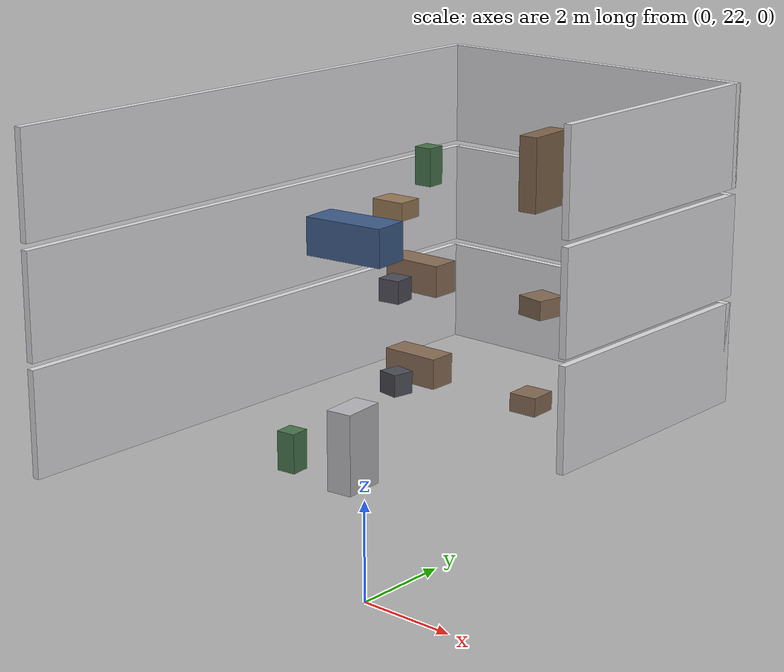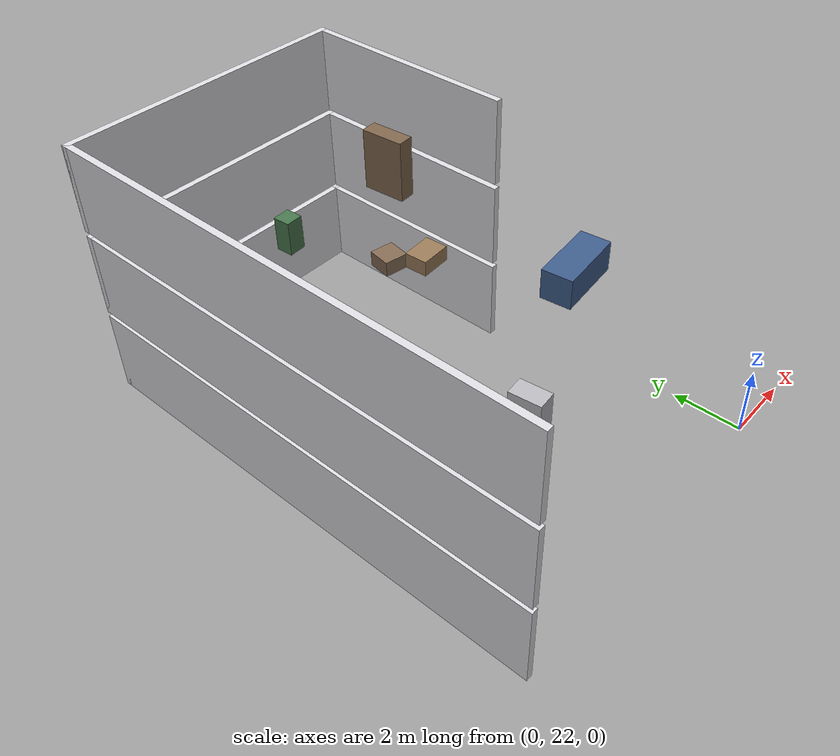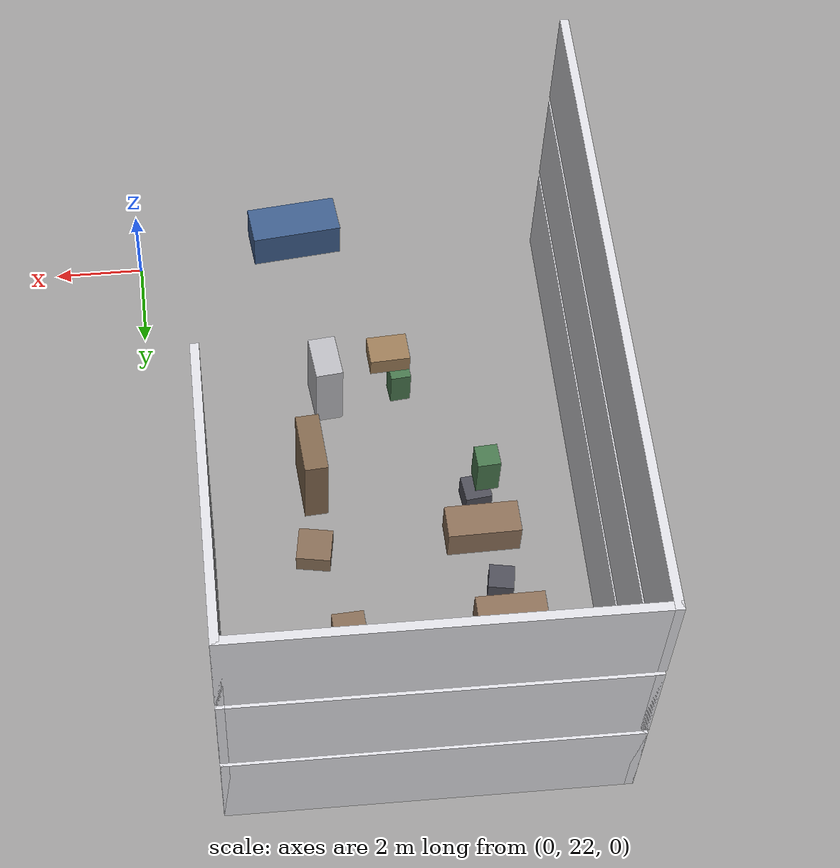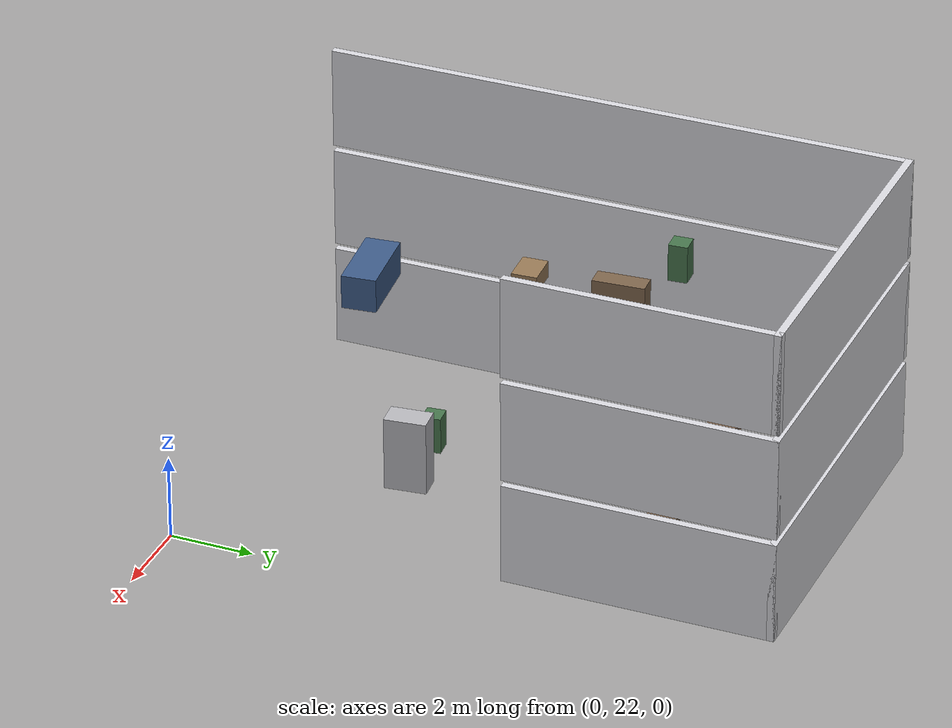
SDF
<sdf version="1.7">
 <model name="generated_building">
  <static>true</static>
  <link name="floor_0_room_2_corridor_wall_upper">
   <pose>-1.1900 32.7025 1.2250 0.0000 0.0000 0.0000</pose>
   <collision name="floor_0_room_2_corridor_wall_upper_collision">
    <geometry><box><size>0.1800 6.4150 2.4500</size></box></geometry>
   </collision>
   <visual name="floor_0_room_2_corridor_wall_upper_visual">
    <geometry><box><size>0.1800 6.4150 2.4500</size></box></geometry>
    <material><ambient>0.86 0.86 0.88 1</ambient><diffuse>0.86 0.86 0.88 1</diffuse></material>
   </visual>
   <gravity>false</gravity>
  </link>
  <link name="floor_0_room_2_west_wall">
   <pose>-9.4100 28.8950 1.2250 0.0000 0.0000 0.0000</pose>
   <collision name="floor_0_room_2_west_wall_collision">
    <geometry><box><size>0.1800 14.0300 2.4500</size></box></geometry>
   </collision>
   <visual name="floor_0_room_2_west_wall_visual">
    <geometry><box><size>0.1800 14.0300 2.4500</size></box></geometry>
    <material><ambient>0.86 0.86 0.88 1</ambient><diffuse>0.86 0.86 0.88 1</diffuse></material>
   </visual>
   <gravity>false</gravity>
  </link>
  <link name="floor_0_room_2_north_wall">
   <pose>-5.3000 35.8200 1.2250 0.0000 0.0000 0.0000</pose>
   <collision name="floor_0_room_2_north_wall_collision">
    <geometry><box><size>8.4000 0.1800 2.4500</size></box></geometry>
   </collision>
   <visual name="floor_0_room_2_north_wall_visual">
    <geometry><box><size>8.4000 0.1800 2.4500</size></box></geometry>
    <material><ambient>0.86 0.86 0.88 1</ambient><diffuse>0.86 0.86 0.88 1</diffuse></material>
   </visual>
   <gravity>false</gravity>
  </link>
  <link name="floor_0_room_2_desk">
   <pose>-7.46135201 32.1159734 0.45 0 0 0.0158183873</pose>
   <collision name="floor_0_room_2_desk_collision">
    <geometry><box><size>1.5000 0.7000 0.7500</size></box></geometry>
   </collision>
   <visual name="floor_0_room_2_desk_visual">
    <geometry><box><size>1.5000 0.7000 0.7500</size></box></geometry>
    <material><ambient>0.54 0.43 0.34 1</ambient><diffuse>0.54 0.43 0.34 1</diffuse></material>
   </visual>
   <gravity>false</gravity>
  </link>
  <link name="floor_0_room_2_chair">
   <pose>-7.37490355 31.1940905 0.28 0 0 -0.173173231</pose>
   <collision name="floor_0_room_2_chair_collision">
    <geometry><box><size>0.5500 0.5500 0.5500</size></box></geometry>
   </collision>
   <visual name="floor_0_room_2_chair_visual">
    <geometry><box><size>0.5500 0.5500 0.5500</size></box></geometry>
    <material><ambient>0.30 0.30 0.34 1</ambient><diffuse>0.30 0.30 0.34 1</diffuse></material>
   </visual>
   <gravity>false</gravity>
  </link>
  <link name="floor_0_room_2_cabinet">
   <pose>-4.02194807 26.0336138 0.9 0 0 0.106755562</pose>
   <collision name="floor_0_room_2_cabinet_collision">
    <geometry><box><size>0.6000 1.0000 1.8000</size></box></geometry>
   </collision>
   <visual name="floor_0_room_2_cabinet_visual">
    <geometry><box><size>0.6000 1.0000 1.8000</size></box></geometry>
    <material><ambient>0.72 0.72 0.74 1</ambient><diffuse>0.72 0.72 0.74 1</diffuse></material>
   </visual>
   <gravity>false</gravity>
  </link>
  <link name="floor_0_room_2_side_table">
   <pose>-4.01439308 32.1215445 0.32 0 0 0.059338545</pose>
   <collision name="floor_0_room_2_side_table_collision">
    <geometry><box><size>0.7000 0.7000 0.4500</size></box></geometry>
   </collision>
   <visual name="floor_0_room_2_side_table_visual">
    <geometry><box><size>0.7000 0.7000 0.4500</size></box></geometry>
    <material><ambient>0.52 0.42 0.33 1</ambient><diffuse>0.52 0.42 0.33 1</diffuse></material>
   </visual>
   <gravity>false</gravity>
  </link>
  <link name="floor_0_room_2_planter">
   <pose>-5.70854987 25.9253672 0.45 0 0 0.0981988586</pose>
   <collision name="floor_0_room_2_planter_collision">
    <geometry><box><size>0.4500 0.4500 0.9000</size></box></geometry>
   </collision>
   <visual name="floor_0_room_2_planter_visual">
    <geometry><box><size>0.4500 0.4500 0.9000</size></box></geometry>
    <material><ambient>0.28 0.46 0.30 1</ambient><diffuse>0.28 0.46 0.30 1</diffuse></material>
   </visual>
   <gravity>false</gravity>
  </link>
  <link name="floor_1_room_2_corridor_wall_upper">
   <pose>-1.1900 32.7025 3.8250 0.0000 0.0000 0.0000</pose>
   <collision name="floor_1_room_2_corridor_wall_upper_collision">
    <geometry><box><size>0.1800 6.4150 2.4500</size></box></geometry>
   </collision>
   <visual name="floor_1_room_2_corridor_wall_upper_visual">
    <geometry><box><size>0.1800 6.4150 2.4500</size></box></geometry>
    <material><ambient>0.86 0.86 0.88 1</ambient><diffuse>0.86 0.86 0.88 1</diffuse></material>
   </visual>
   <gravity>false</gravity>
  </link>
  <link name="floor_1_room_2_west_wall">
   <pose>-9.4100 28.8950 3.8250 0.0000 0.0000 0.0000</pose>
   <collision name="floor_1_room_2_west_wall_collision">
    <geometry><box><size>0.1800 14.0300 2.4500</size></box></geometry>
   </collision>
   <visual name="floor_1_room_2_west_wall_visual">
    <geometry><box><size>0.1800 14.0300 2.4500</size></box></geometry>
    <material><ambient>0.86 0.86 0.88 1</ambient><diffuse>0.86 0.86 0.88 1</diffuse></material>
   </visual>
   <gravity>false</gravity>
  </link>
  <link name="floor_1_room_2_north_wall">
   <pose>-5.3000 35.8200 3.8250 0.0000 0.0000 0.0000</pose>
   <collision name="floor_1_room_2_north_wall_collision">
    <geometry><box><size>8.4000 0.1800 2.4500</size></box></geometry>
   </collision>
   <visual name="floor_1_room_2_north_wall_visual">
    <geometry><box><size>8.4000 0.1800 2.4500</size></box></geometry>
    <material><ambient>0.86 0.86 0.88 1</ambient><diffuse>0.86 0.86 0.88 1</diffuse></material>
   </visual>
   <gravity>false</gravity>
  </link>
  <link name="floor_1_room_2_desk">
   <pose>-6.76269468 31.3724194 3.05 0 0 0.0217037175</pose>
   <collision name="floor_1_room_2_desk_collision">
    <geometry><box><size>1.5000 0.7000 0.7500</size></box></geometry>
   </collision>
   <visual name="floor_1_room_2_desk_visual">
    <geometry><box><size>1.5000 0.7000 0.7500</size></box></geometry>
    <material><ambient>0.54 0.43 0.34 1</ambient><diffuse>0.54 0.43 0.34 1</diffuse></material>
   </visual>
   <gravity>false</gravity>
  </link>
  <link name="floor_1_room_2_chair">
   <pose>-6.75245976 30.4551013 2.88 0 0 0.117541975</pose>
   <collision name="floor_1_room_2_chair_collision">
    <geometry><box><size>0.5500 0.5500 0.5500</size></box></geometry>
   </collision>
   <visual name="floor_1_room_2_chair_visual">
    <geometry><box><size>0.5500 0.5500 0.5500</size></box></geometry>
    <material><ambient>0.30 0.30 0.34 1</ambient><diffuse>0.30 0.30 0.34 1</diffuse></material>
   </visual>
   <gravity>false</gravity>
  </link>
  <link name="floor_1_room_2_side_table">
   <pose>-3.31942091 31.5248161 2.92 0 0 -0.171241131</pose>
   <collision name="floor_1_room_2_side_table_collision">
    <geometry><box><size>0.7000 0.7000 0.4500</size></box></geometry>
   </collision>
   <visual name="floor_1_room_2_side_table_visual">
    <geometry><box><size>0.7000 0.7000 0.4500</size></box></geometry>
    <material><ambient>0.52 0.42 0.33 1</ambient><diffuse>0.52 0.42 0.33 1</diffuse></material>
   </visual>
   <gravity>false</gravity>
  </link>
  <link name="floor_2_room_2_corridor_wall_upper">
   <pose>-1.1900 32.7025 6.4250 0.0000 0.0000 0.0000</pose>
   <collision name="floor_2_room_2_corridor_wall_upper_collision">
    <geometry><box><size>0.1800 6.4150 2.4500</size></box></geometry>
   </collision>
   <visual name="floor_2_room_2_corridor_wall_upper_visual">
    <geometry><box><size>0.1800 6.4150 2.4500</size></box></geometry>
    <material><ambient>0.86 0.86 0.88 1</ambient><diffuse>0.86 0.86 0.88 1</diffuse></material>
   </visual>
   <gravity>false</gravity>
  </link>
  <link name="floor_2_room_2_west_wall">
   <pose>-9.4100 28.8950 6.4250 0.0000 0.0000 0.0000</pose>
   <collision name="floor_2_room_2_west_wall_collision">
    <geometry><box><size>0.1800 14.0300 2.4500</size></box></geometry>
   </collision>
   <visual name="floor_2_room_2_west_wall_visual">
    <geometry><box><size>0.1800 14.0300 2.4500</size></box></geometry>
    <material><ambient>0.86 0.86 0.88 1</ambient><diffuse>0.86 0.86 0.88 1</diffuse></material>
   </visual>
   <gravity>false</gravity>
  </link>
  <link name="floor_2_room_2_north_wall">
   <pose>-5.3000 35.8200 6.4250 0.0000 0.0000 0.0000</pose>
   <collision name="floor_2_room_2_north_wall_collision">
    <geometry><box><size>8.4000 0.1800 2.4500</size></box></geometry>
   </collision>
   <visual name="floor_2_room_2_north_wall_visual">
    <geometry><box><size>8.4000 0.1800 2.4500</size></box></geometry>
    <material><ambient>0.86 0.86 0.88 1</ambient><diffuse>0.86 0.86 0.88 1</diffuse></material>
   </visual>
   <gravity>false</gravity>
  </link>
  <link name="floor_2_room_2_sofa_b">
   <pose>-3.39829543 25.44743 5.65 0 0 3.24763364</pose>
   <collision name="floor_2_room_2_sofa_b_collision">
    <geometry><box><size>1.8000 0.8000 0.8000</size></box></geometry>
   </collision>
   <visual name="floor_2_room_2_sofa_b_visual">
    <geometry><box><size>1.8000 0.8000 0.8000</size></box></geometry>
    <material><ambient>0.24 0.36 0.54 1</ambient><diffuse>0.24 0.36 0.54 1</diffuse></material>
   </visual>
   <gravity>false</gravity>
  </link>
  <link name="floor_2_room_2_coffee_table">
   <pose>-5.05279221 28.5545542 5.45 0 0 0.0586070767</pose>
   <collision name="floor_2_room_2_coffee_table_collision">
    <geometry><box><size>0.8000 0.6000 0.4000</size></box></geometry>
   </collision>
   <visual name="floor_2_room_2_coffee_table_visual">
    <geometry><box><size>0.8000 0.6000 0.4000</size></box></geometry>
    <material><ambient>0.60 0.48 0.34 1</ambient><diffuse>0.60 0.48 0.34 1</diffuse></material>
   </visual>
   <gravity>false</gravity>
  </link>
  <link name="floor_2_room_2_bookshelf">
   <pose>-3.27188411 31.4255181 6.05 0 0 0.0717811991</pose>
   <collision name="floor_2_room_2_bookshelf_collision">
    <geometry><box><size>0.4500 1.2000 1.7000</size></box></geometry>
   </collision>
   <visual name="floor_2_room_2_bookshelf_visual">
    <geometry><box><size>0.4500 1.2000 1.7000</size></box></geometry>
    <material><ambient>0.50 0.40 0.30 1</ambient><diffuse>0.50 0.40 0.30 1</diffuse></material>
   </visual>
   <gravity>false</gravity>
  </link>
  <link name="floor_2_room_2_planter">
   <pose>-6.65598994 31.5094593 5.65 0 0 0.0611971183</pose>
   <collision name="floor_2_room_2_planter_collision">
    <geometry><box><size>0.4500 0.4500 0.9000</size></box></geometry>
   </collision>
   <visual name="floor_2_room_2_planter_visual">
    <geometry><box><size>0.4500 0.4500 0.9000</size></box></geometry>
    <material><ambient>0.28 0.46 0.30 1</ambient><diffuse>0.28 0.46 0.30 1</diffuse></material>
   </visual>
   <gravity>false</gravity>
  </link>
 </model>
</sdf>
